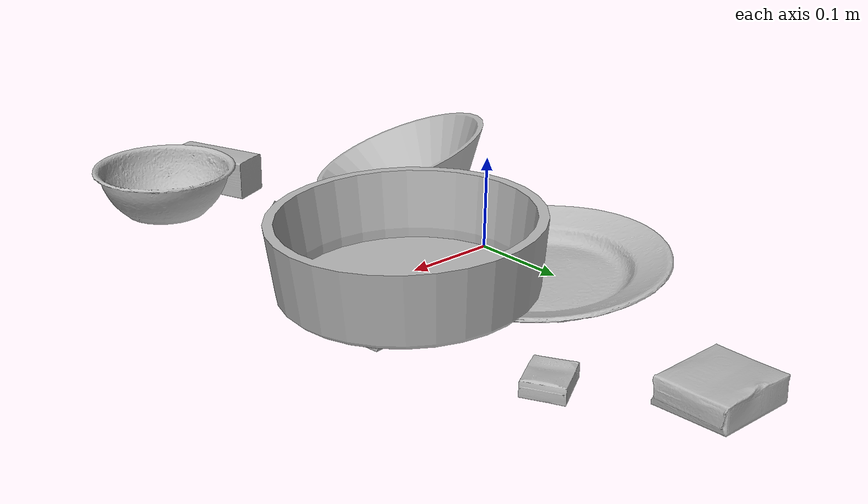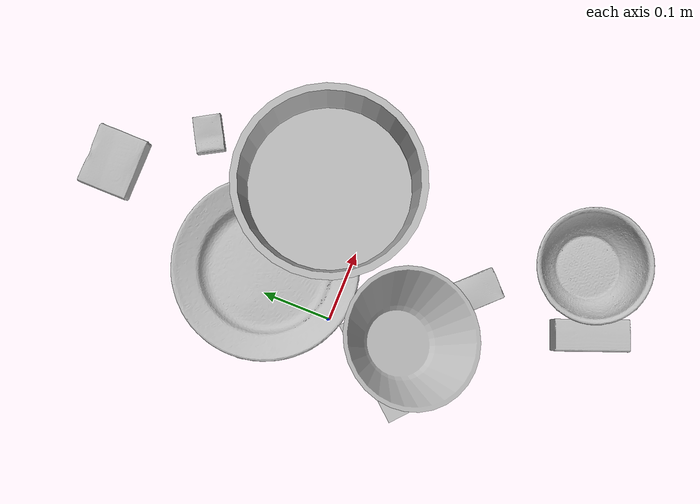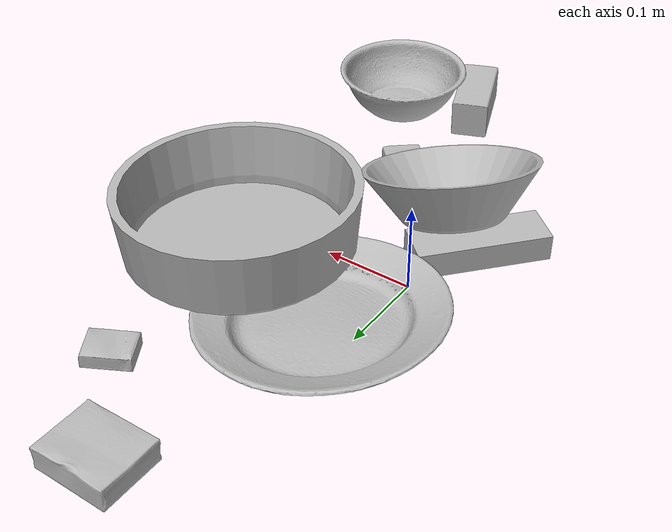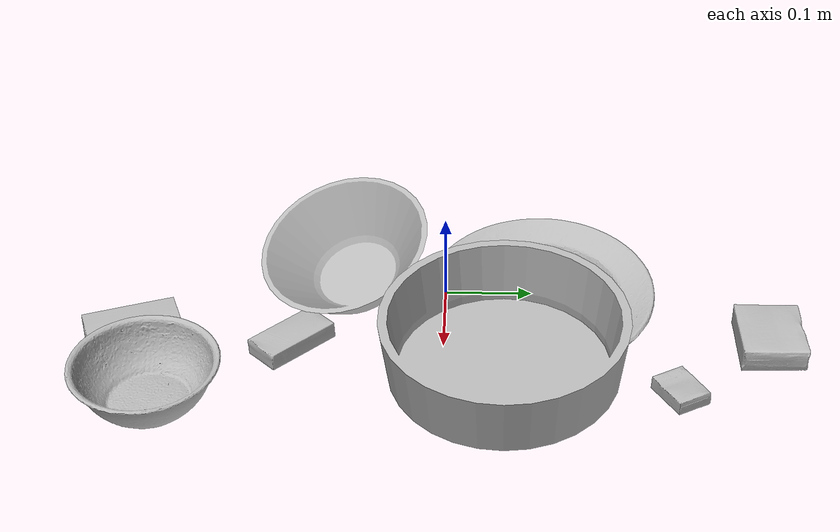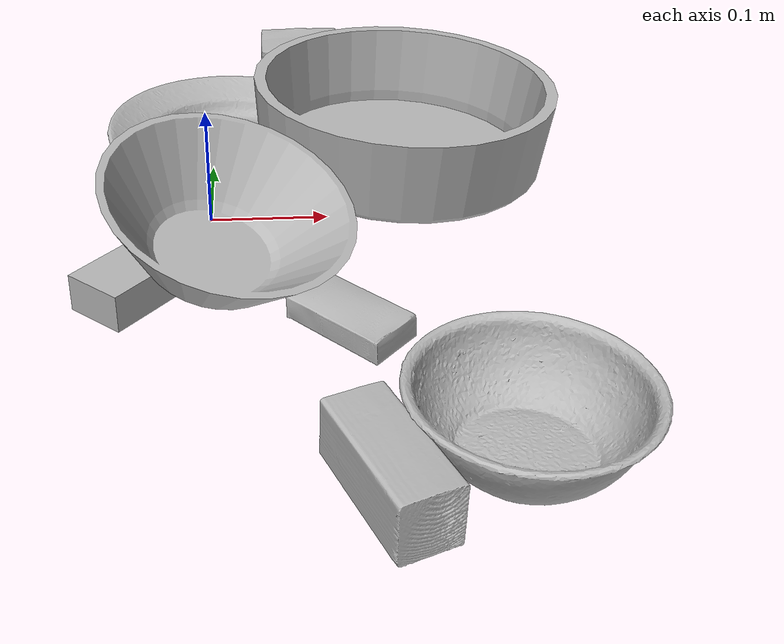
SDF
<sdf version="1.4">
  <world name="default">
    <light name="light1" type="point">
      <pose>0 0 1 0 0 0</pose>
      <diffuse>3 3 3 1</diffuse>
      <specular>3 3 3 1</specular>
    </light>
    <light name="light2" type="point">
      <pose>0 0.5 2 0 0 0</pose>
      <diffuse>1 1 1 1</diffuse>
      <specular>1 1 1 1</specular>
    </light>
    <light name="light3" type="point">
      <pose>0 0.5 2 0 0 0</pose>
      <diffuse>3 3 3 1</diffuse>
      <specular>3 3 3 1</specular>
    </light>
    <scene>
      <ambient>0.7 0.7 0.7</ambient>
    </scene>
    <model name="box1">
      <link name="link_box1">
        <collision name="default">
          <geometry>
            <mesh>
              <uri>model://jenga/collision_meshes/collision.obj</uri>
              <scale>1.0 1.0 1.0</scale>
            </mesh>
          </geometry>
          <surface>
            <friction>
              <ode>
                <mu>0.5</mu>
                <mu2>0.5</mu2>
              </ode>
            </friction>
          <contact>
        <ode>
            <max_vel>0</max_vel>
            <min_depth>0.0001</min_depth>
            <kp>1e8</kp>
        </ode>
    </contact></surface>
        </collision>
        <visual name="default">
          <geometry>
            <mesh>
              <uri>model://jenga/visual_meshes/visual.dae</uri>
              <scale>1.0 1.0 1.0</scale>
            </mesh>
          </geometry>
        </visual>
        <inertial>
          <mass>0.24226053059101105</mass>
          <pose>-2.502855807051674e-07 -0.0001025000965455547 -4.092339804628864e-05 0.0 -7.34215461761844e-07 0.0</pose>
          <inertia>
            <ixx>6.703936e-05</ixx>
            <iyy>0.0004542569</iyy>
            <izz>0.00048495785</izz>
            <ixy>0</ixy>
            <ixz>0</ixz>
            <iyz>0</iyz>
          </inertia>
        </inertial>
      </link>
      <pose>-0.03220422565937042 -0.08937086910009384 0.015000161714851856 1.7002115489061654e-05 1.9053998843464253e-06 0.8563325496337297</pose>
    </model>
    <model name="box11">
      <link name="link_box11">
        <collision name="default">
          <geometry>
            <mesh>
              <uri>model://sugar_box/collision_meshes/collision.obj</uri>
              <scale>0.5 0.5 0.5</scale>
            </mesh>
          </geometry>
          <surface>
            <friction>
              <ode>
                <mu>0.5</mu>
                <mu2>0.5</mu2>
              </ode>
            </friction>
          <contact>
        <ode>
            <max_vel>0</max_vel>
            <min_depth>0.0001</min_depth>
            <kp>1e8</kp>
        </ode>
    </contact></surface>
        </collision>
        <visual name="default">
          <geometry>
            <mesh>
              <uri>model://sugar_box/visual_meshes/visual.dae</uri>
              <scale>0.5 0.5 0.5</scale>
            </mesh>
          </geometry>
        </visual>
        <inertial>
          <mass>0.06204606965184212</mass>
          <pose>0.0005171863595023751 1.9245549992774613e-05 -0.00018182402709499002 -0.0004046263588767038 0.0010506634057764815 0.0026153785560837986</pose>
          <inertia>
            <ixx>1.2924152e-05</ixx>
            <iyy>4.1773517e-05</iyy>
            <izz>5.0007893e-05</izz>
            <ixy>0</ixy>
            <ixz>0</ixz>
            <iyz>0</iyz>
          </inertia>
        </inertial>
      </link>
      <pose>0.10576654970645905 -0.16901381313800812 0.011714808642864227 -0.04384976206258279 -0.010043760676471544 2.3416355106441524</pose>
    </model>
    <model name="box2">
      <link name="link_box2">
        <collision name="default">
          <geometry>
            <mesh>
              <uri>model://gelatin_box/collision_meshes/collision.obj</uri>
              <scale>1.0 1.0 1.0</scale>
            </mesh>
          </geometry>
          <surface>
            <friction>
              <ode>
                <mu>0.5</mu>
                <mu2>0.5</mu2>
              </ode>
            </friction>
          <contact>
        <ode>
            <max_vel>0</max_vel>
            <min_depth>0.0001</min_depth>
            <kp>1e8</kp>
        </ode>
    </contact></surface>
        </collision>
        <visual name="default">
          <geometry>
            <mesh>
              <uri>model://gelatin_box/visual_meshes/visual.dae</uri>
              <scale>1.0 1.0 1.0</scale>
            </mesh>
          </geometry>
        </visual>
        <inertial>
          <mass>0.13706544041633606</mass>
          <pose>0.000431961816502735 0.00011156871187267825 -0.0003640321083366871 -0.0010503719975702072 -0.0047558196187974565 0.01644056506069309</pose>
          <inertia>
            <ixx>9.675702e-05</ixx>
            <iyy>6.911303e-05</iyy>
            <izz>0.00014728573</izz>
            <ixy>0</ixy>
            <ixz>0</ixz>
            <iyz>0</iyz>
          </inertia>
        </inertial>
      </link>
      <pose>0.09256484359502792 0.36328741908073425 0.015168312005698681 0.005596462951454554 -0.007303634084082143 1.5634532283124452</pose>
    </model>
    <model name="box21">
      <link name="link_box21">
        <collision name="default">
          <geometry>
            <mesh>
              <uri>model://pudding_box/collision_meshes/collision.obj</uri>
              <scale>0.5 0.5 0.5</scale>
            </mesh>
          </geometry>
          <surface>
            <friction>
              <ode>
                <mu>0.5</mu>
                <mu2>0.5</mu2>
              </ode>
            </friction>
          <contact>
        <ode>
            <max_vel>0</max_vel>
            <min_depth>0.0001</min_depth>
            <kp>1e8</kp>
        </ode>
    </contact></surface>
        </collision>
        <visual name="default">
          <geometry>
            <mesh>
              <uri>model://pudding_box/visual_meshes/visual.dae</uri>
              <scale>0.5 0.5 0.5</scale>
            </mesh>
          </geometry>
        </visual>
        <inertial>
          <mass>0.041178666055202484</mass>
          <pose>0.00024474109522998333 0.00040339428232982755 -0.00025944141088984907 0.005213101335872514 -0.006603799630434185 0.020079819569992066</pose>
          <inertia>
            <ixx>1.163759e-05</ixx>
            <iyy>7.8298535e-06</iyy>
            <izz>1.7185945e-05</izz>
            <ixy>0</ixy>
            <ixz>0</ixz>
            <iyz>0</iyz>
          </inertia>
        </inertial>
      </link>
      <pose>0.23024709522724152 0.0873263031244278 0.010578587651252747 -0.03033100599772613 -0.014069490368134086 -3.051882718287241</pose>
    </model>
    <model name="box3">
      <link name="link_box3">
        <collision name="default">
          <geometry>
            <mesh>
              <uri>model://cracker_box/collision_meshes/collision.obj</uri>
              <scale>0.25 0.25 0.25</scale>
            </mesh>
          </geometry>
          <surface>
            <friction>
              <ode>
                <mu>0.5</mu>
                <mu2>0.5</mu2>
              </ode>
            </friction>
          <contact>
        <ode>
            <max_vel>0</max_vel>
            <min_depth>0.0001</min_depth>
            <kp>1e8</kp>
        </ode>
    </contact></surface>
        </collision>
        <visual name="default">
          <geometry>
            <mesh>
              <uri>model://cracker_box/visual_meshes/visual.dae</uri>
              <scale>0.25 0.25 0.25</scale>
            </mesh>
          </geometry>
        </visual>
        <inertial>
          <mass>0.02017100155353546</mass>
          <pose>0.00023660367878619581 6.358561222441494e-05 -0.00042573839891701937 -0.0003162077973682912 -0.011106487737506417 0.0025467945369474112</pose>
          <inertia>
            <ixx>3.2066264e-06</ixx>
            <iyy>5.2947703e-06</iyy>
            <izz>7.556123e-06</izz>
            <ixy>0</ixy>
            <ixz>0</ixz>
            <iyz>0</iyz>
          </inertia>
        </inertial>
      </link>
      <pose>0.17943094670772552 0.2563049793243408 0.009120451286435127 -0.011788053637483526 -0.007367147202796686 0.5149623467863692</pose>
    </model>
    <model name="box31">
      <link name="link_box31">
        <collision name="default">
          <geometry>
            <mesh>
              <uri>model://wood_block/collision_meshes/collision.obj</uri>
              <scale>0.5 0.5 0.5</scale>
            </mesh>
          </geometry>
          <surface>
            <friction>
              <ode>
                <mu>0.5</mu>
                <mu2>0.5</mu2>
              </ode>
            </friction>
          <contact>
        <ode>
            <max_vel>0</max_vel>
            <min_depth>0.0001</min_depth>
            <kp>1e8</kp>
        </ode>
    </contact></surface>
        </collision>
        <visual name="default">
          <geometry>
            <mesh>
              <uri>model://wood_block/visual_meshes/visual.dae</uri>
              <scale>0.5 0.5 0.5</scale>
            </mesh>
          </geometry>
        </visual>
        <inertial>
          <mass>0.1962708830833435</mass>
          <pose>-2.9066577553749084e-06 -0.000285404734313488 0.00013204291462898254 -0.05220969561834339 -0.0051926963065425085 -0.006861379449261536</pose>
          <inertia>
            <ixx>6.566003e-05</ixx>
            <iyy>0.00020742005</iyy>
            <izz>0.00020664421</izz>
            <ixy>0</ixy>
            <ixz>0</ixz>
            <iyz>0</iyz>
          </inertia>
        </inertial>
      </link>
      <pose>0.11439908295869827 -0.3434373140335083 0.022527484223246574 -0.015850197457599986 -0.0004018060068347596 -1.1993503458424908</pose>
    </model>
    <model name="plate1">
      <link name="link_plate1">
        <collision name="default">
          <geometry>
            <mesh>
              <uri>model://plate/collision_meshes/collision.obj</uri>
              <scale>1.0 1.0 1.0</scale>
            </mesh>
          </geometry>
          <surface>
            <friction>
              <ode>
                <mu>0.5</mu>
                <mu2>0.5</mu2>
              </ode>
            </friction>
          <contact>
        <ode>
            <max_vel>0</max_vel>
            <min_depth>0.0001</min_depth>
            <kp>1e8</kp>
        </ode>
    </contact></surface>
        </collision>
        <visual name="default">
          <geometry>
            <mesh>
              <uri>model://plate/visual_meshes/visual.dae</uri>
              <scale>1.0 1.0 1.0</scale>
            </mesh>
          </geometry>
        </visual>
        <inertial>
          <mass>0.17345036566257477</mass>
          <pose>-0.0006044625188224018 0.00027825802681036294 -0.0010561991948634386 0.0022187574415082918 -0.0032254973035065115 0.4526175972404713</pose>
          <inertia>
            <ixx>0.00081140426</ixx>
            <iyy>0.0008036436</iyy>
            <izz>0.0015869853</izz>
            <ixy>0</ixy>
            <ixz>0</ixz>
            <iyz>0</iyz>
          </inertia>
        </inertial>
      </link>
      <pose>0.03421300649642944 0.10830239206552505 0.02050386182963848 -0.04992077998017261 -0.07887252059144587 -2.9386071181384255</pose>
    </model>
    <model name="bowl1">
      <link name="link_bowl1">
        <collision name="default">
          <geometry>
            <mesh>
              <uri>model://bowl/collision_meshes/collision.obj</uri>
              <scale>1.0 1.0 1.0</scale>
            </mesh>
          </geometry>
          <surface>
            <friction>
              <ode>
                <mu>0.5</mu>
                <mu2>0.5</mu2>
              </ode>
            </friction>
          <contact>
        <ode>
            <max_vel>0</max_vel>
            <min_depth>0.0001</min_depth>
            <kp>1e8</kp>
        </ode>
    </contact></surface>
        </collision>
        <visual name="default">
          <geometry>
            <mesh>
              <uri>model://bowl/visual_meshes/visual.dae</uri>
              <scale>1.0 1.0 1.0</scale>
            </mesh>
          </geometry>
        </visual>
        <inertial>
          <mass>0.11633910983800888</mass>
          <pose>0.00020445004338398576 -0.0010302083101123571 -0.0008042659610509872 -0.01576420252076368 0.01454664289610389 0.7140315541596068</pose>
          <inertia>
            <ixx>0.0002672402</ixx>
            <iyy>0.000261269</iyy>
            <izz>0.00044958986</izz>
            <ixy>0</ixy>
            <ixz>0</ixz>
            <iyz>0</iyz>
          </inertia>
        </inertial>
      </link>
      <pose>0.20370979607105255 -0.3110654354095459 0.02778000757098198 -3.657074617051899e-08 8.123113045456487e-09 -1.1732075242433704</pose>
    </model>
    <model name="plate2">
      <link name="link_plate2">
        <collision name="default">
          <geometry>
            <mesh>
              <uri>model://pan_tefal/collision_meshes/collision.obj</uri>
              <scale>1.0 1.0 1.0</scale>
            </mesh>
          </geometry>
          <surface>
            <friction>
              <ode>
                <mu>0.5</mu>
                <mu2>0.5</mu2>
              </ode>
            </friction>
          <contact>
        <ode>
            <max_vel>0</max_vel>
            <min_depth>0.0001</min_depth>
            <kp>1e8</kp>
        </ode>
    </contact></surface>
        </collision>
        <visual name="default">
          <geometry>
            <mesh>
              <uri>model://pan_tefal/visual_meshes/visual.dae</uri>
              <scale>1.0 1.0 1.0</scale>
            </mesh>
          </geometry>
        </visual>
        <inertial>
          <mass>0.6251956820487976</mass>
          <pose>-0.00018002417345996946 3.279016891610809e-05 -0.00851493515074253 0.0008190253681579672 -0.00033013925853852665 -0.331857454583129</pose>
          <inertia>
            <ixx>0.004315697</ixx>
            <iyy>0.00434352</iyy>
            <izz>0.007944365</izz>
            <ixy>0</ixy>
            <ixz>0</ixz>
            <iyz>0</iyz>
          </inertia>
        </inertial>
      </link>
      <pose>0.17082370817661285 0.0661531612277031 0.060236647725105286 -0.048023822714285555 -0.007357491555816089 -2.099723371644152</pose>
    </model>
    <model name="bowl2">
      <link name="link_bowl2">
        <collision name="default">
          <geometry>
            <mesh>
              <uri>model://bowl_a/collision_meshes/collision.obj</uri>
              <scale>1.0 1.0 1.0</scale>
            </mesh>
          </geometry>
          <surface>
            <friction>
              <ode>
                <mu>0.5</mu>
                <mu2>0.5</mu2>
              </ode>
            </friction>
          <contact>
        <ode>
            <max_vel>0</max_vel>
            <min_depth>0.0001</min_depth>
            <kp>1e8</kp>
        </ode>
    </contact></surface>
        </collision>
        <visual name="default">
          <geometry>
            <mesh>
              <uri>model://bowl_a/visual_meshes/visual.dae</uri>
              <scale>1.0 1.0 1.0</scale>
            </mesh>
          </geometry>
        </visual>
        <inertial>
          <mass>0.3434441387653351</mass>
          <pose>0.0002786742115858942 4.731103399535641e-05 -0.0013765294570475817 -0.000980532155977885 -0.0010938290454026757 -0.191241060811112</pose>
          <inertia>
            <ixx>0.0009778013</ixx>
            <iyy>0.0009838042</iyy>
            <izz>0.0017390571</izz>
            <ixy>0</ixy>
            <ixz>0</ixz>
            <iyz>0</iyz>
          </inertia>
        </inertial>
      </link>
      <pose>0.012875479646027088 -0.10828442126512527 0.054190780967473984 0.3577512033874731 -0.06884533260478798 1.038331418424315</pose>
    </model>
  <physics type="ode">
      <max_contacts>50</max_contacts>
      <ode>
        <solver>
          <type>quick</type>
          <iters>75</iters>
        </solver>
        <constraints>
          <contact_max_correcting_vel>0</contact_max_correcting_vel>
          <contact_surface_layer>0</contact_surface_layer>
        </constraints>
      </ode>
    </physics></world>
</sdf>
